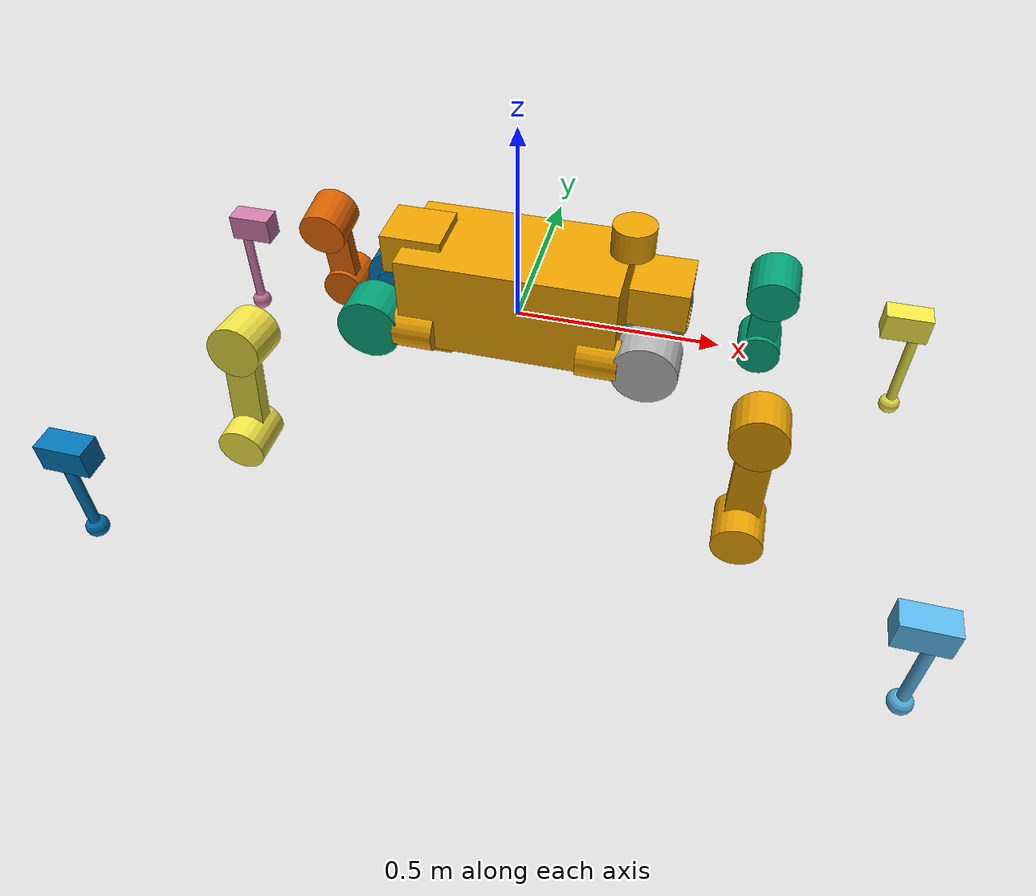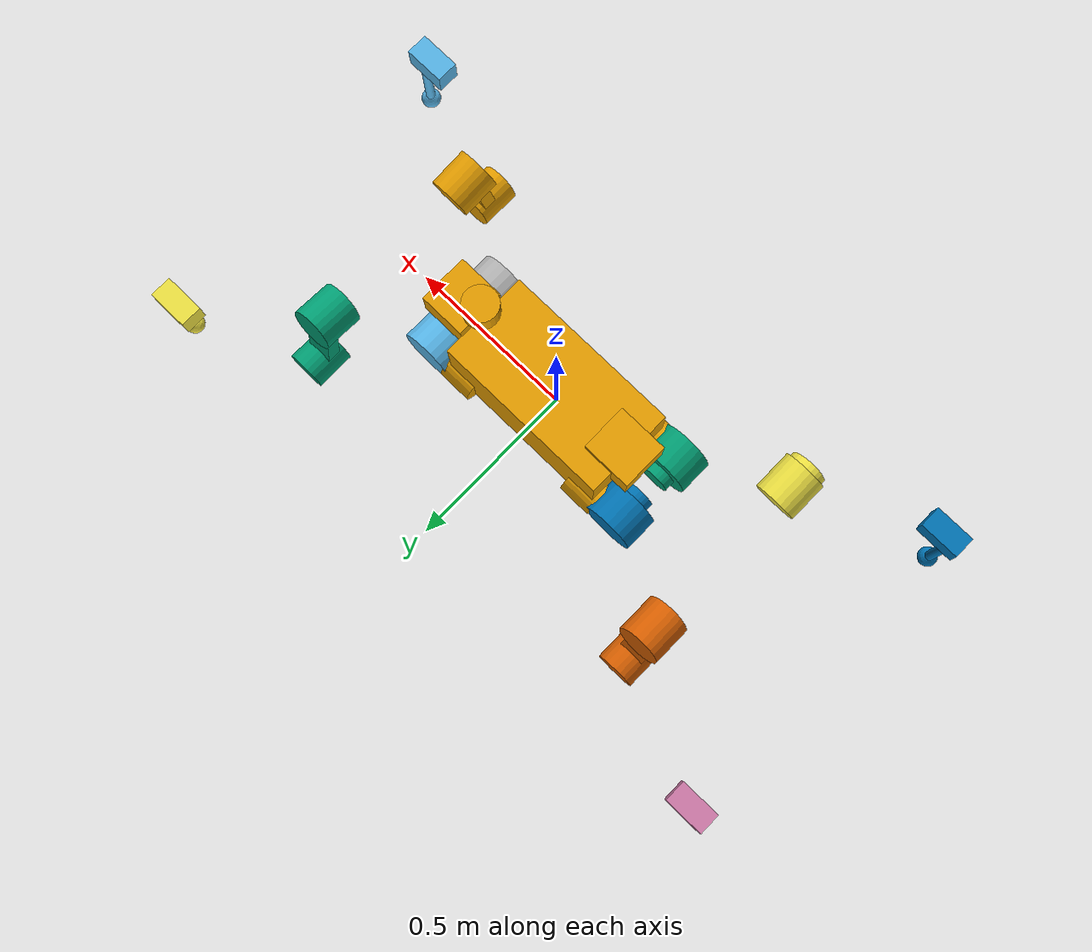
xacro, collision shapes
<?xml version='1.0' encoding='utf-8'?>
<robot name='cerberus_anymal_b_sensor_config_1' xmlns:xacro='http://ros.org/wiki/xacro'>
  <xacro:arg name="name" default="cerberus_anymal_b_sensor_config_1"/>
  <xacro:property name="robot_description_package" value="cerberus_anymal_b_sensor_config_1"/>
  <xacro:property name="robot_namespace" value="$(arg name)"/>
  <link name='${robot_namespace}/base'>
    <inertial>
      <origin xyz='-0.001799 -0.001412 0.050337' rpy='0 -0 0'/>
      <mass value='23.32578'/>
      <inertia ixx='0.30242793077' ixy='-0.00184980716' ixz='-0.00398797474' iyy='0.88931002497' iyz='-0.00192099149' izz='0.86742722698'/>
    </inertial>
    <collision name='base_collision'>
      <origin xyz='0 0 0.08' rpy='0 -0 0'/>
      <geometry>
        <box size='0.531 0.27 0.24'/>
      </geometry>
    </collision>
    <collision name='base_collision_1'>
      <origin xyz='0.227 0.116 0' rpy='3.14159 1.57079 3.14159'/>
      <geometry>
        <cylinder radius='0.05' length='0.1'/>
      </geometry>
    </collision>
    <collision name='base_collision_2'>
      <origin xyz='0.227 -0.116 0' rpy='3.14159 1.57079 3.14159'/>
      <geometry>
        <cylinder radius='0.05' length='0.1'/>
      </geometry>
    </collision>
    <collision name='base_collision_3'>
      <origin xyz='-0.227 0.116 0' rpy='3.14159 1.57079 3.14159'/>
      <geometry>
        <cylinder radius='0.05' length='0.1'/>
      </geometry>
    </collision>
    <collision name='base_collision_4'>
      <origin xyz='-0.227 -0.116 0' rpy='3.14159 1.57079 3.14159'/>
      <geometry>
        <cylinder radius='0.05' length='0.1'/>
      </geometry>
    </collision>
    <collision name='base_collision_5'>
      <origin xyz='0.2155 0 -0.09' rpy='0 -0 0'/>
      <geometry>
        <box size='0.1 0.1 0.07'/>
      </geometry>
    </collision>
    <collision name='base_collision_6'>
      <origin xyz='-0.2155 0 -0.09' rpy='0 -0 0'/>
      <geometry>
        <box size='0.1 0.1 0.07'/>
      </geometry>
    </collision>
    <collision name='base_collision_7'>
      <origin xyz='0 0 -0.09' rpy='0 -0 0'/>
      <geometry>
        <box size='0.531 0.02 0.07'/>
      </geometry>
    </collision>
    <collision name='base_fixed_joint_lump__jetson_case_collision_8'>
      <origin xyz='-0.245 0 0.171' rpy='0 0 -1.5708'/>
      <geometry>
        <box size='0.14 0.15 0.1'/>
      </geometry>
    </collision>
    <collision name='base_fixed_joint_lump__sensor_head_collision_9'>
      <origin xyz='0.3482 0 0.131624' rpy='0 -0 0'/>
      <geometry>
        <box size='0.14 0.15 0.1'/>
      </geometry>
    </collision>
    <collision name='base_fixed_joint_lump__downward_realsense_camera_collision_10'>
      <origin xyz='0.405017 -0.000105 0.06461' rpy='-0.009501 0.382227 0'/>
      <geometry>
        <box size='0.025 0.089 0.025'/>
      </geometry>
    </collision>
    <collision name='base_fixed_joint_lump__velodyne_axis_aligned_collision_11'>
      <origin xyz='0.27 0 0.2676' rpy='0 -0 0'/>
      <geometry>
        <cylinder radius='0.0516' length='0.0717'/>
      </geometry>
    </collision>
    <visual name='base_visual'>
      <origin xyz='0 0 0' rpy='0 -0 0'/>
      <geometry>
        <mesh filename='package://${robot_description_package}/meshes/anymal_base.dae' scale='0.001 0.001 0.001'/>
      </geometry>
    </visual>
    <visual name='base_fixed_joint_lump__jetson_case_visual_1'>
      <origin xyz='-0.245 0 0.201' rpy='0 0 -1.5708'/>
      <geometry>
        <mesh filename='package://${robot_description_package}/meshes/darpa_jetson_back.stl' scale='0.001 0.001 0.001'/>
      </geometry>
    </visual>
    <visual name='base_fixed_joint_lump__sensor_head_visual_2'>
      <origin xyz='0.3482 0 0.161624' rpy='0 -0 0'/>
      <geometry>
        <mesh filename='package://${robot_description_package}/meshes/darpa_head_1.stl' scale='0.001 0.001 0.001'/>
      </geometry>
    </visual>
    <visual name='base_fixed_joint_lump__downward_realsense_camera_visual_3'>
      <origin xyz='0.388757 -0.000224 0.057675' rpy='-0.009501 0.382227 0'/>
      <geometry>
        <mesh filename='package://${robot_description_package}/meshes/realsense_d435.dae' scale='0.001 0.001 0.001'/>
      </geometry>
    </visual>
    <visual name='base_fixed_joint_lump__velodyne_axis_aligned_visual_4'>
      <origin xyz='0.27 0 0.2299' rpy='0 -0 0'/>
      <geometry>
        <mesh filename='package://${robot_description_package}/meshes/VLP16_base_1.dae' scale='1 1 1'/>
      </geometry>
    </visual>
    <visual name='base_fixed_joint_lump__velodyne_axis_aligned_visual_5'>
      <origin xyz='0.27 0 0.2299' rpy='0 -0 0'/>
      <geometry>
        <mesh filename='package://${robot_description_package}/meshes/VLP16_base_2.dae' scale='1 1 1'/>
      </geometry>
    </visual>
    <visual name='base_fixed_joint_lump__velodyne_visual_6'>
      <origin xyz='0.27 0 0.2299' rpy='0 -0 0'/>
      <geometry>
        <mesh filename='package://${robot_description_package}/meshes/VLP16_scan.dae' scale='1 1 1'/>
      </geometry>
    </visual>
    <visual name='base_fixed_joint_lump__light_back_left_visual_7'>
      <origin xyz='-0.206 0.12 0.14' rpy='3.14159 1.57079 1.5692'/>
      <geometry>
        <cylinder radius='0.019' length='0.005'/>
      </geometry>
    </visual>
    <visual name='base_fixed_joint_lump__light_back_right_visual_8'>
      <origin xyz='-0.206 -0.12 0.14' rpy='3.14159 1.57079 -1.57239'/>
      <geometry>
        <cylinder radius='0.019' length='0.005'/>
      </geometry>
    </visual>
    <visual name='base_fixed_joint_lump__light_front_left_visual_9'>
      <origin xyz='0.305 0.045 0.33' rpy='-3.14159 1.57079 0.436332'/>
      <geometry>
        <cylinder radius='0.019' length='0.005'/>
      </geometry>
    </visual>
    <visual name='base_fixed_joint_lump__light_front_right_visual_10'>
      <origin xyz='0.305 -0.045 0.33' rpy='3.14159 1.57079 -0.436332'/>
      <geometry>
        <cylinder radius='0.019' length='0.005'/>
      </geometry>
    </visual>
  </link>
  <sensor name='imu_sensor' update_rate='400'>
    <parent link='${robot_namespace}/base'/>
    <origin xyz='0 0 0' rpy='0 -0 0'/>
  </sensor>
  <sensor name='front_laser' update_rate='10'>
    <parent link='${robot_namespace}/base'/>
    <origin xyz='0.27 0 0.2676' rpy='0 -0 0'/>
  </sensor>
  <sensor name='downward_realsense' update_rate='10'>
    <parent link='${robot_namespace}/base'/>
    <origin xyz='0.388757 -0.000224 0.0576' rpy='-0.009501 0.38227 -0'/>
    <camera>
      <image width='320' height='240' format='R8G8B8' hfov='1.0472' near='0.01' far='300' />
    </camera>
  </sensor>
  <sensor name='camera_front' update_rate='20'>
    <parent link='${robot_namespace}/base'/>
    <origin xyz='0.419397 0.02 0.161624' rpy='0 -0 0'/>
    <camera>
      <image width='1280' height='960' format='R8G8B8' hfov='2' near='0.02' far='300' />
    </camera>
  </sensor>
  <sensor name='camera_back_right' update_rate='20'>
    <parent link='${robot_namespace}/base'/>
    <origin xyz='-0.311374 -0.152675 0.136916' rpy='0 0 -1.5708'/>
    <camera>
      <image width='1280' height='960' format='R8G8B8' hfov='2' near='0.02' far='300' />
    </camera>
  </sensor>
  <sensor name='camera_back_left' update_rate='20'>
    <parent link='${robot_namespace}/base'/>
    <origin xyz='-0.310417 0.158145 0.139186' rpy='0 -0 1.5708'/>
    <camera>
      <image width='1280' height='960' format='R8G8B8' hfov='2' near='0.02' far='300' />
    </camera>
  </sensor>
  <link name='${robot_namespace}/LF_HIP'>
    <inertial>
      <origin xyz='0.064516 -0.003787 -0.000152' rpy='0 -0 0'/>
      <mass value='1.42462'/>
      <inertia ixx='0.00243023' ixy='-1.53024e-05' ixz='-2.18191e-05' iyy='0.00230257' iyz='2.6473e-05' izz='0.00198068'/>
    </inertial>
    <collision name='LF_HIP_collision'>
      <origin xyz='0.0635 -0.009 0' rpy='1.5708 -0 0'/>
      <geometry>
        <cylinder radius='0.08' length='0.1'/>
      </geometry>
    </collision>
    <collision name='LF_HIP_collision_1'>
      <origin xyz='0.0635 -0.074 0' rpy='1.5708 -0 0'/>
      <geometry>
        <cylinder radius='0.045' length='0.03'/>
      </geometry>
    </collision>
    <visual name='LF_HIP_visual'>
      <origin xyz='0 0 0' rpy='0 -0 0'/>
      <geometry>
        <mesh filename='package://${robot_description_package}/meshes/anymal_hip_l.dae' scale='0.001 0.001 0.001'/>
      </geometry>
    </visual>
  </link>
  <link name='${robot_namespace}/LF_THIGH'>
    <inertial>
      <origin xyz='-0.003898 0.054227 -0.214583' rpy='0 -0 0'/>
      <mass value='1.63498'/>
      <inertia ixx='0.0120368' ixy='6.76207e-05' ixz='0.000287806' iyy='0.0120644' iyz='-0.0014061' izz='0.00249423'/>
    </inertial>
    <collision name='LF_THIGH_collision'>
      <origin xyz='0 0.035 -0.125' rpy='0.145 -0 0'/>
      <geometry>
        <box size='0.08 0.04 0.25'/>
      </geometry>
    </collision>
    <collision name='LF_THIGH_collision_1'>
      <origin xyz='0 0.069 -0.25' rpy='1.5708 -0 0'/>
      <geometry>
        <cylinder radius='0.06' length='0.12'/>
      </geometry>
    </collision>
    <collision name='LF_THIGH_collision_2'>
      <origin xyz='0 -0.005 0' rpy='1.7158 -0 0'/>
      <geometry>
        <cylinder radius='0.066' length='0.12'/>
      </geometry>
    </collision>
    <visual name='LF_THIGH_visual'>
      <origin xyz='0 0 0' rpy='0 -0 0'/>
      <geometry>
        <mesh filename='package://${robot_description_package}/meshes/anymal_thigh_l.dae' scale='0.001 0.001 0.001'/>
      </geometry>
    </visual>
  </link>
  <link name='${robot_namespace}/LF_SHANK'>
    <inertial>
      <origin xyz='0.058733 -0.010824 -0.098064' rpy='0 -0 0'/>
      <mass value='0.347375'/>
      <inertia ixx='0.00685813' ixy='3.2229e-05' ixz='0.00142869' iyy='0.00770431' iyz='-0.000316237' izz='0.00101942'/>
    </inertial>
    <collision name='LF_SHANK_collision'>
      <origin xyz='0.065 -0.015 0.01' rpy='3.14159 1.57079 3.14159'/>
      <geometry>
        <box size='0.08 0.07 0.13'/>
      </geometry>
    </collision>
    <collision name='LF_SHANK_fixed_joint_lump__LF_ADAPTER_collision_1'>
      <origin xyz='0.1 -0.02 -0.160625' rpy='0 -0 0'/>
      <geometry>
        <cylinder radius='0.015' length='0.32125'/>
      </geometry>
    </collision>
    <collision name='LF_SHANK_fixed_joint_lump__LF_FOOT_collision_2'>
      <origin xyz='0.1 -0.02 -0.298' rpy='0 -0 0'/>
      <geometry>
        <sphere radius='0.031'/>
      </geometry>
    </collision>
    <visual name='LF_SHANK_visual'>
      <origin xyz='0 0 0' rpy='0 -0 0'/>
      <geometry>
        <mesh filename='package://${robot_description_package}/meshes/anymal_shank_l.dae' scale='0.001 0.001 0.001'/>
      </geometry>
    </visual>
    <visual name='LF_SHANK_fixed_joint_lump__LF_ADAPTER_visual_1'>
      <origin xyz='0.1 -0.02 0.032' rpy='0 -0 0'/>
      <geometry>
        <mesh filename='package://${robot_description_package}/meshes/anymal_foot.dae' scale='0.001 0.001 0.001'/>
      </geometry>
    </visual>
  </link>
  <link name='${robot_namespace}/LH_HIP'>
    <inertial>
      <origin xyz='-0.064516 -0.003787 -0.000152' rpy='0 -0 0'/>
      <mass value='1.42462'/>
      <inertia ixx='0.00243023' ixy='1.53024e-05' ixz='2.18191e-05' iyy='0.00230257' iyz='2.6473e-05' izz='0.00198068'/>
    </inertial>
    <collision name='LH_HIP_collision'>
      <origin xyz='-0.0635 -0.009 0' rpy='-1.5708 0 0'/>
      <geometry>
        <cylinder radius='0.08' length='0.1'/>
      </geometry>
    </collision>
    <collision name='LH_HIP_collision_1'>
      <origin xyz='-0.0635 -0.074 0' rpy='-1.5708 0 0'/>
      <geometry>
        <cylinder radius='0.045' length='0.03'/>
      </geometry>
    </collision>
    <visual name='LH_HIP_visual'>
      <origin xyz='0 0 0' rpy='0 -0 3.14159'/>
      <geometry>
        <mesh filename='package://${robot_description_package}/meshes/anymal_hip_r.dae' scale='0.001 0.001 0.001'/>
      </geometry>
    </visual>
  </link>
  <link name='${robot_namespace}/LH_THIGH'>
    <inertial>
      <origin xyz='0.003898 0.054227 -0.214583' rpy='0 -0 0'/>
      <mass value='1.63498'/>
      <inertia ixx='0.0120368' ixy='-6.76207e-05' ixz='-0.000287806' iyy='0.0120644' iyz='-0.0014061' izz='0.00249423'/>
    </inertial>
    <collision name='LH_THIGH_collision'>
      <origin xyz='0 0.035 -0.125' rpy='0.145 -0 0'/>
      <geometry>
        <box size='0.08 0.04 0.25'/>
      </geometry>
    </collision>
    <collision name='LH_THIGH_collision_1'>
      <origin xyz='0 0.069 -0.25' rpy='1.5708 -0 0'/>
      <geometry>
        <cylinder radius='0.06' length='0.12'/>
      </geometry>
    </collision>
    <collision name='LH_THIGH_collision_2'>
      <origin xyz='0 -0.005 0' rpy='1.7158 -0 0'/>
      <geometry>
        <cylinder radius='0.066' length='0.12'/>
      </geometry>
    </collision>
    <visual name='LH_THIGH_visual'>
      <origin xyz='0 0 0' rpy='0 -0 3.14159'/>
      <geometry>
        <mesh filename='package://${robot_description_package}/meshes/anymal_thigh_r.dae' scale='0.001 0.001 0.001'/>
      </geometry>
    </visual>
  </link>
  <link name='${robot_namespace}/LH_SHANK'>
    <inertial>
      <origin xyz='-0.058733 -0.010824 -0.098064' rpy='0 -0 0'/>
      <mass value='0.347375'/>
      <inertia ixx='0.00685813' ixy='-3.2229e-05' ixz='-0.00142869' iyy='0.00770431' iyz='-0.000316237' izz='0.00101942'/>
    </inertial>
    <collision name='LH_SHANK_collision'>
      <origin xyz='-0.065 -0.015 0.01' rpy='3.14159 1.57079 3.14159'/>
      <geometry>
        <box size='0.08 0.07 0.13'/>
      </geometry>
    </collision>
    <collision name='LH_SHANK_fixed_joint_lump__LH_ADAPTER_collision_1'>
      <origin xyz='-0.1 -0.02 -0.160625' rpy='0 -0 0'/>
      <geometry>
        <cylinder radius='0.015' length='0.32125'/>
      </geometry>
    </collision>
    <collision name='LH_SHANK_fixed_joint_lump__LH_FOOT_collision_2'>
      <origin xyz='-0.1 -0.02 -0.298' rpy='0 -0 0'/>
      <geometry>
        <sphere radius='0.031'/>
      </geometry>
    </collision>
    <visual name='LH_SHANK_visual'>
      <origin xyz='0 0 0' rpy='0 -0 3.14159'/>
      <geometry>
        <mesh filename='package://${robot_description_package}/meshes/anymal_shank_r.dae' scale='0.001 0.001 0.001'/>
      </geometry>
    </visual>
    <visual name='LH_SHANK_fixed_joint_lump__LH_ADAPTER_visual_1'>
      <origin xyz='-0.1 -0.02 0.032' rpy='0 -0 3.14159'/>
      <geometry>
        <mesh filename='package://${robot_description_package}/meshes/anymal_foot.dae' scale='0.001 0.001 0.001'/>
      </geometry>
    </visual>
  </link>
  <link name='${robot_namespace}/RF_HIP'>
    <inertial>
      <origin xyz='0.064516 0.003787 -0.000152' rpy='0 -0 0'/>
      <mass value='1.42462'/>
      <inertia ixx='0.00243023' ixy='1.53024e-05' ixz='-2.18191e-05' iyy='0.00230257' iyz='-2.6473e-05' izz='0.00198068'/>
    </inertial>
    <collision name='RF_HIP_collision'>
      <origin xyz='0.0635 0.009 0' rpy='1.5708 -0 0'/>
      <geometry>
        <cylinder radius='0.08' length='0.1'/>
      </geometry>
    </collision>
    <collision name='RF_HIP_collision_1'>
      <origin xyz='0.0635 0.074 0' rpy='1.5708 -0 0'/>
      <geometry>
        <cylinder radius='0.045' length='0.03'/>
      </geometry>
    </collision>
    <visual name='RF_HIP_visual'>
      <origin xyz='0 0 0' rpy='0 -0 0'/>
      <geometry>
        <mesh filename='package://${robot_description_package}/meshes/anymal_hip_r.dae' scale='0.001 0.001 0.001'/>
      </geometry>
    </visual>
  </link>
  <link name='${robot_namespace}/RF_THIGH'>
    <inertial>
      <origin xyz='-0.003898 -0.054227 -0.214583' rpy='0 -0 0'/>
      <mass value='1.63498'/>
      <inertia ixx='0.0120368' ixy='-6.76207e-05' ixz='0.000287806' iyy='0.0120644' iyz='0.0014061' izz='0.00249423'/>
    </inertial>
    <collision name='RF_THIGH_collision'>
      <origin xyz='0 -0.035 -0.125' rpy='-0.145 0 0'/>
      <geometry>
        <box size='0.08 0.04 0.25'/>
      </geometry>
    </collision>
    <collision name='RF_THIGH_collision_1'>
      <origin xyz='0 -0.069 -0.25' rpy='1.5708 -0 0'/>
      <geometry>
        <cylinder radius='0.06' length='0.12'/>
      </geometry>
    </collision>
    <collision name='RF_THIGH_collision_2'>
      <origin xyz='0 0.005 0' rpy='-1.7158 0 0'/>
      <geometry>
        <cylinder radius='0.066' length='0.12'/>
      </geometry>
    </collision>
    <visual name='RF_THIGH_visual'>
      <origin xyz='0 0 0' rpy='0 -0 0'/>
      <geometry>
        <mesh filename='package://${robot_description_package}/meshes/anymal_thigh_r.dae' scale='0.001 0.001 0.001'/>
      </geometry>
    </visual>
  </link>
  <link name='${robot_namespace}/RF_SHANK'>
    <inertial>
      <origin xyz='0.058733 0.010824 -0.098064' rpy='0 -0 0'/>
      <mass value='0.347375'/>
      <inertia ixx='0.00685813' ixy='-3.2229e-05' ixz='0.00142869' iyy='0.00770431' iyz='0.000316237' izz='0.00101942'/>
    </inertial>
    <collision name='RF_SHANK_collision'>
      <origin xyz='0.065 0.015 0.01' rpy='3.14159 1.57079 3.14159'/>
      <geometry>
        <box size='0.08 0.07 0.13'/>
      </geometry>
    </collision>
    <collision name='RF_SHANK_fixed_joint_lump__RF_ADAPTER_collision_1'>
      <origin xyz='0.1 0.02 -0.160625' rpy='0 -0 0'/>
      <geometry>
        <cylinder radius='0.015' length='0.32125'/>
      </geometry>
    </collision>
    <collision name='RF_SHANK_fixed_joint_lump__RF_FOOT_collision_2'>
      <origin xyz='0.1 0.02 -0.298' rpy='0 -0 0'/>
      <geometry>
        <sphere radius='0.031'/>
      </geometry>
    </collision>
    <visual name='RF_SHANK_visual'>
      <origin xyz='0 0 0' rpy='0 -0 0'/>
      <geometry>
        <mesh filename='package://${robot_description_package}/meshes/anymal_shank_r.dae' scale='0.001 0.001 0.001'/>
      </geometry>
    </visual>
    <visual name='RF_SHANK_fixed_joint_lump__RF_ADAPTER_visual_1'>
      <origin xyz='0.1 0.02 0.032' rpy='0 -0 0'/>
      <geometry>
        <mesh filename='package://${robot_description_package}/meshes/anymal_foot.dae' scale='0.001 0.001 0.001'/>
      </geometry>
    </visual>
  </link>
  <link name='${robot_namespace}/RH_HIP'>
    <inertial>
      <origin xyz='-0.064516 0.003787 -0.000152' rpy='0 -0 0'/>
      <mass value='1.42462'/>
      <inertia ixx='0.00243023' ixy='-1.53024e-05' ixz='2.18191e-05' iyy='0.00230257' iyz='-2.6473e-05' izz='0.00198068'/>
    </inertial>
    <collision name='RH_HIP_collision'>
      <origin xyz='-0.0635 0.009 0' rpy='-1.5708 0 0'/>
      <geometry>
        <cylinder radius='0.08' length='0.1'/>
      </geometry>
    </collision>
    <collision name='RH_HIP_collision_1'>
      <origin xyz='-0.0635 0.074 0' rpy='-1.5708 0 0'/>
      <geometry>
        <cylinder radius='0.045' length='0.03'/>
      </geometry>
    </collision>
    <visual name='RH_HIP_visual'>
      <origin xyz='0 0 0' rpy='0 -0 3.14159'/>
      <geometry>
        <mesh filename='package://${robot_description_package}/meshes/anymal_hip_l.dae' scale='0.001 0.001 0.001'/>
      </geometry>
    </visual>
  </link>
  <link name='${robot_namespace}/RH_THIGH'>
    <inertial>
      <origin xyz='0.003898 -0.054227 -0.214583' rpy='0 -0 0'/>
      <mass value='1.63498'/>
      <inertia ixx='0.0120368' ixy='6.76207e-05' ixz='-0.000287806' iyy='0.0120644' iyz='0.0014061' izz='0.00249423'/>
    </inertial>
    <collision name='RH_THIGH_collision'>
      <origin xyz='0 -0.035 -0.125' rpy='-0.145 0 0'/>
      <geometry>
        <box size='0.08 0.04 0.25'/>
      </geometry>
    </collision>
    <collision name='RH_THIGH_collision_1'>
      <origin xyz='0 -0.069 -0.25' rpy='1.5708 -0 0'/>
      <geometry>
        <cylinder radius='0.06' length='0.12'/>
      </geometry>
    </collision>
    <collision name='RH_THIGH_collision_2'>
      <origin xyz='0 0.005 0' rpy='-1.7158 0 0'/>
      <geometry>
        <cylinder radius='0.066' length='0.12'/>
      </geometry>
    </collision>
    <visual name='RH_THIGH_visual'>
      <origin xyz='0 0 0' rpy='0 -0 3.14159'/>
      <geometry>
        <mesh filename='package://${robot_description_package}/meshes/anymal_thigh_l.dae' scale='0.001 0.001 0.001'/>
      </geometry>
    </visual>
  </link>
  <link name='${robot_namespace}/RH_SHANK'>
    <inertial>
      <origin xyz='-0.058733 0.010824 -0.098064' rpy='0 -0 0'/>
      <mass value='0.347375'/>
      <inertia ixx='0.00685813' ixy='3.2229e-05' ixz='-0.00142869' iyy='0.00770431' iyz='0.000316237' izz='0.00101942'/>
    </inertial>
    <collision name='RH_SHANK_collision'>
      <origin xyz='-0.065 0.015 0.01' rpy='3.14159 1.57079 3.14159'/>
      <geometry>
        <box size='0.08 0.07 0.13'/>
      </geometry>
    </collision>
    <collision name='RH_SHANK_fixed_joint_lump__RH_ADAPTER_collision_1'>
      <origin xyz='-0.1 0.02 -0.160625' rpy='0 -0 0'/>
      <geometry>
        <cylinder radius='0.015' length='0.32125'/>
      </geometry>
    </collision>
    <collision name='RH_SHANK_fixed_joint_lump__RH_FOOT_collision_2'>
      <origin xyz='-0.1 0.02 -0.298' rpy='0 -0 0'/>
      <geometry>
        <sphere radius='0.031'/>
      </geometry>
    </collision>
    <visual name='RH_SHANK_visual'>
      <origin xyz='0 0 0' rpy='0 -0 3.14159'/>
      <geometry>
        <mesh filename='package://${robot_description_package}/meshes/anymal_shank_l.dae' scale='0.001 0.001 0.001'/>
      </geometry>
    </visual>
    <visual name='RH_SHANK_fixed_joint_lump__RH_ADAPTER_visual_1'>
      <origin xyz='-0.1 0.02 0.032' rpy='0 -0 3.14159'/>
      <geometry>
        <mesh filename='package://${robot_description_package}/meshes/anymal_foot.dae' scale='0.001 0.001 0.001'/>
      </geometry>
    </visual>
  </link>
  <joint name='LF_HAA' type='revolute'>
    <origin xyz='0.277 0.116 0' rpy='0 -0 0'/>
    <parent link='${robot_namespace}/base'/>
    <child link='${robot_namespace}/LF_HIP'/>
    <dynamics damping='0' friction='0' />
    <axis xyz='1 0 0'/>
    <limit lower='-9.42' upper='9.42' effort='80' velocity='15'/>
  </joint>
  <joint name='LF_HFE' type='revolute'>
    <origin xyz='0.3405 0.157 0' rpy='0 -0 0'/>
    <parent link='${robot_namespace}/LF_HIP'/>
    <child link='${robot_namespace}/LF_THIGH'/>
    <dynamics damping='0' friction='0' />
    <axis xyz='0 1 0'/>
    <limit lower='-9.42' upper='9.42' effort='80' velocity='15'/>
  </joint>
  <joint name='LF_KFE' type='revolute'>
    <origin xyz='0.3405 0.266 -0.25' rpy='0 -0 0'/>
    <parent link='${robot_namespace}/LF_THIGH'/>
    <child link='${robot_namespace}/LF_SHANK'/>
    <dynamics damping='0' friction='0' />
    <axis xyz='0 1 0'/>
    <limit lower='-9.42' upper='9.42' effort='80' velocity='15'/>
  </joint>
  <joint name='LH_HAA' type='revolute'>
    <origin xyz='-0.277 0.116 0' rpy='0 -0 0'/>
    <parent link='${robot_namespace}/base'/>
    <child link='${robot_namespace}/LH_HIP'/>
    <dynamics damping='0' friction='0' />
    <axis xyz='1 0 0'/>
    <limit lower='-9.42' upper='9.42' effort='80' velocity='15'/>
  </joint>
  <joint name='LH_HFE' type='revolute'>
    <origin xyz='-0.3405 0.157 0' rpy='0 -0 0'/>
    <parent link='${robot_namespace}/LH_HIP'/>
    <child link='${robot_namespace}/LH_THIGH'/>
    <dynamics damping='0' friction='0' />
    <axis xyz='0 1 0'/>
    <limit lower='-9.42' upper='9.42' effort='80' velocity='15'/>
  </joint>
  <joint name='LH_KFE' type='revolute'>
    <origin xyz='-0.3405 0.266 -0.25' rpy='0 -0 0'/>
    <parent link='${robot_namespace}/LH_THIGH'/>
    <child link='${robot_namespace}/LH_SHANK'/>
    <dynamics damping='0' friction='0' />
    <axis xyz='0 1 0'/>
    <limit lower='-9.42' upper='9.42' effort='80' velocity='15'/>
  </joint>
  <joint name='RF_HAA' type='revolute'>
    <origin xyz='0.277 -0.116 0' rpy='0 -0 0'/>
    <parent link='${robot_namespace}/base'/>
    <child link='${robot_namespace}/RF_HIP'/>
    <dynamics damping='0' friction='0' />
    <axis xyz='1 0 0'/>
    <limit lower='-9.42' upper='9.42' effort='80' velocity='15'/>
  </joint>
  <joint name='RF_HFE' type='revolute'>
    <origin xyz='0.3405 -0.157 0' rpy='0 -0 0'/>
    <parent link='${robot_namespace}/RF_HIP'/>
    <child link='${robot_namespace}/RF_THIGH'/>
    <dynamics damping='0' friction='0' />
    <axis xyz='0 1 0'/>
    <limit lower='-9.42' upper='9.42' effort='80' velocity='15'/>
  </joint>
  <joint name='RF_KFE' type='revolute'>
    <origin xyz='0.3405 -0.266 -0.25' rpy='0 -0 0'/>
    <parent link='${robot_namespace}/RF_THIGH'/>
    <child link='${robot_namespace}/RF_SHANK'/>
    <dynamics damping='0' friction='0' />
    <axis xyz='0 1 0'/>
    <limit lower='-9.42' upper='9.42' effort='80' velocity='15'/>
  </joint>
  <joint name='RH_HAA' type='revolute'>
    <origin xyz='-0.277 -0.116 0' rpy='0 -0 0'/>
    <parent link='${robot_namespace}/base'/>
    <child link='${robot_namespace}/RH_HIP'/>
    <dynamics damping='0' friction='0' />
    <axis xyz='1 0 0'/>
    <limit lower='-9.42' upper='9.42' effort='80' velocity='15'/>
  </joint>
  <joint name='RH_HFE' type='revolute'>
    <origin xyz='-0.3405 -0.157 0' rpy='0 -0 0'/>
    <parent link='${robot_namespace}/RH_HIP'/>
    <child link='${robot_namespace}/RH_THIGH'/>
    <dynamics damping='0' friction='0' />
    <axis xyz='0 1 0'/>
    <limit lower='-9.42' upper='9.42' effort='80' velocity='15'/>
  </joint>
  <joint name='RH_KFE' type='revolute'>
    <origin xyz='-0.3405 -0.266 -0.25' rpy='0 -0 0'/>
    <parent link='${robot_namespace}/RH_THIGH'/>
    <child link='${robot_namespace}/RH_SHANK'/>
    <dynamics damping='0' friction='0' />
    <axis xyz='0 1 0'/>
    <limit lower='-9.42' upper='9.42' effort='80' velocity='15'/>
  </joint>
</robot>
